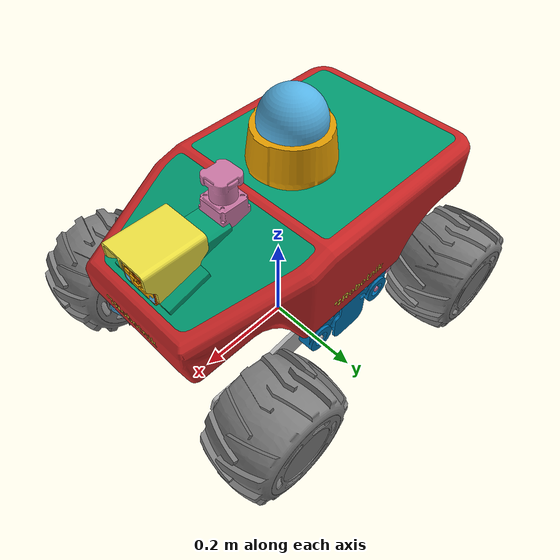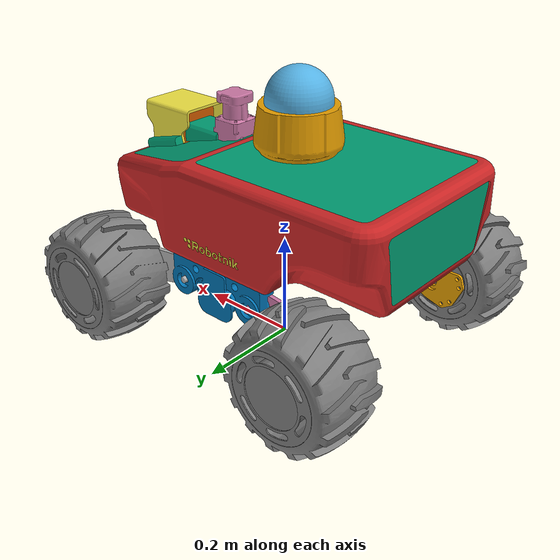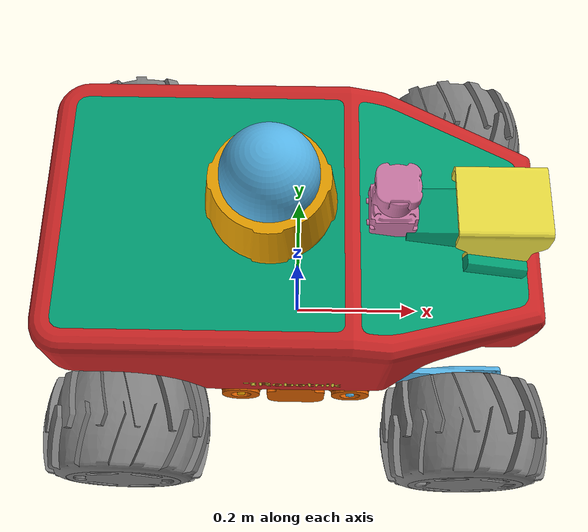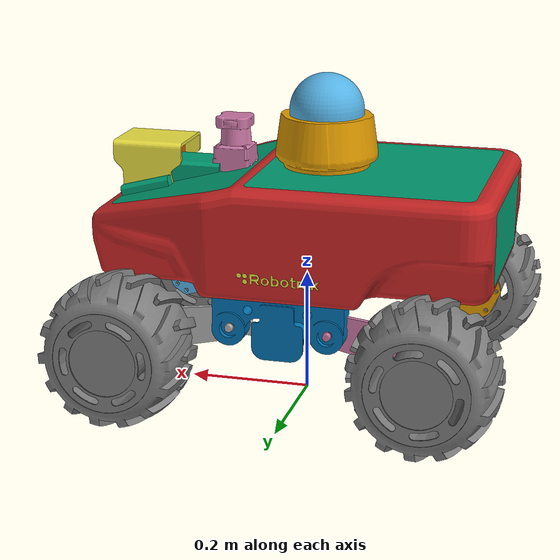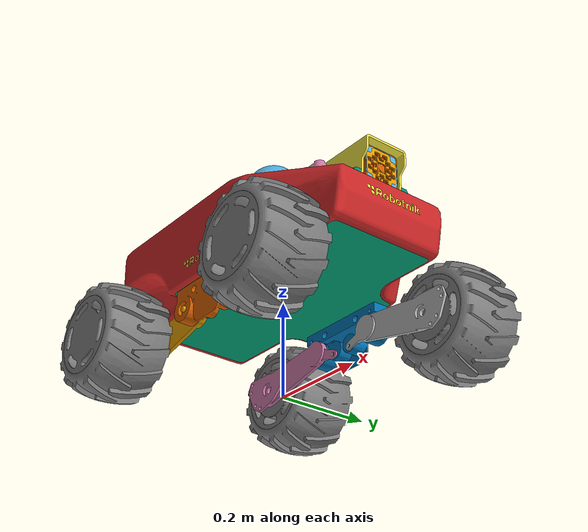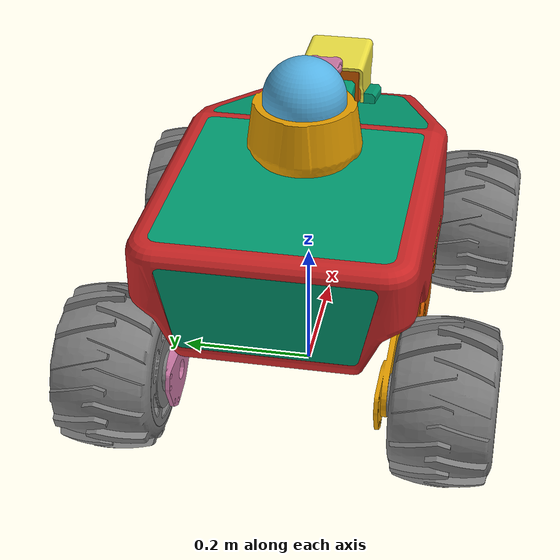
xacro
<?xml version="1.0"?>
<robot name="summit_xl" xmlns:xacro="http://www.ros.org/wiki/xacro">

  <!-- Import all Gazebo-customization elements, including Gazebo colors -->
  <xacro:include filename="$(find summit_xl_description)/urdf/summit_xl_hq.gazebo" />

  <!-- Robot mechanical and motor parameters -->
  <xacro:property name="PI" value="3.1415926535897931"/>
  <xacro:property name="wheel_offset_x" value="0.165" />    <!-- x,y,z in base_footprint CS -->
  <xacro:property name="wheel_offset_y" value="0.0"/>
  <xacro:property name="wheel_offset_z" value="0.070" />
  <xacro:property name="wheel_joint_damping" value="0.0" />
  <xacro:property name="wheel_joint_friction" value="0.0" />
  <xacro:property name="wheel_joint_effort_limit" value="100.0" />
  <xacro:property name="wheel_joint_velocity_limit" value="100.0" />
  <xacro:property name="wheel_mechanical_reduction" value="1.0" />

  <xacro:property name="ptz_joint_effort_limit" value="100.0" />
  <xacro:property name="ptz_joint_velocity_limit" value="100.0"/>
  <xacro:property name="ptz_joint_friction" value="0.1" />
  <xacro:property name="ptz_joint_damping" value="0.1" />
  <xacro:property name="ptz_mechanical_reduction" value="1.0" />

  <xacro:property name="bar_joint_effort_limit" value="100.0" />
  <xacro:property name="bar_joint_velocity_limit" value="100.0" />

  <!-- Used for fixing robot to Gazebo 'base_link' -->

  <!-- BASE FOOTPRINT -->
  <!-- base_footprint is a fictitious link(frame) that is on the ground right below base_link origin,
             navigation stack depends on this frame -->
  <link name="base_footprint">
      <visual>
          <origin xyz="0 0 0" rpy="0 0 0" />
          <geometry>
             <box size="0.001 0.001 0.001" />
          </geometry>
      </visual>

      <collision>
          <origin xyz="0 0 0" rpy="0 0 0" />
          <geometry>
            <box size="0.001 0.001 0.001" />
         </geometry>
     </collision>
  </link>

  <joint name="base_footprint_joint" type="fixed">
     <!-- NB While you would think this would make it go up, it is oddly reversed.
      This moves the joint to 0,0,0 where we want it for rviz, etc. -->
     <!-- origin xyz="0 0 0.110" rpy="0 0 0" / -->
     <origin xyz="0 0 0.210" rpy="0 0 0" />
     <parent link="base_footprint"/>
     <child link="base_link" />
  </joint>

  <!-- BASE_LINK (RED) -->
  <link name="base_link">
    <inertial>
      <mass value="25.0" />
      <origin xyz="0 0 0" />
      <inertia  ixx="1.391" ixy="0.004"  ixz="0.0"  iyy="6.853"  iyz="0.0"  izz="6.125" />
    </inertial>
    <visual>
       <origin xyz="0 0 0" rpy="0 0 0" />
       <geometry>
	 <mesh filename="package://summit_xl_description/meshes/hq_suspension/xl_chassis.dae"/>
	   </geometry>
    </visual>
    <collision>
       <origin xyz="0 0 0" rpy="0 0 0 " />
       <geometry>
         <mesh filename="package://summit_xl_description/meshes/hq_suspension/xl_chassis.dae"/>
       </geometry>
    </collision>
  </link>

  <!-- Robot covers (gray) -->
  <link name="cover_link">
    <inertial>
      <mass value="0.1" />
      <origin xyz="0 0 0" />
      <inertia  ixx="0.001" ixy="0.0"  ixz="0.0"  iyy="0.001"  iyz="0.0"  izz="0.001" />
    </inertial>
    <visual>
       <origin xyz="0 0 0" rpy="0 0 0" />
       <geometry>
	 <mesh filename="package://summit_xl_description/meshes/hq_suspension/xl_covers.dae"/>
	   </geometry>
    </visual>
    <collision>
       <origin xyz="0 0 0" rpy="0 0 0 " />
       <geometry>
         <mesh filename="package://summit_xl_description/meshes/hq_suspension/xl_covers.dae"/>
       </geometry>
    </collision>
  </link>
  <joint name="covers_joint" type="fixed">
     <origin xyz="0 0 0" rpy="0 0 0" />
     <parent link="base_link"/>
     <child link="cover_link" />
  </joint>

  <!-- ROBOTNIK LOGOS -->
  <!-- RED -->
  <link name="logo_red">
    <inertial>
      <mass value="1.0" />
      <origin xyz="0 0 0" />
      <inertia  ixx="0.001" ixy="0.0"  ixz="0.0"  iyy="0.001"  iyz="0.0"  izz="0.001" />
    </inertial>
    <visual>
       <origin xyz="0 0 0" rpy="0 0 0" />
       <geometry>
	     <mesh filename="package://summit_xl_description/meshes/hq_suspension/xl_logo_red.dae"/>
	   </geometry>
    </visual>
  </link>
  <joint name="logo_red_joint" type="fixed">
     <origin xyz="0 0 0" rpy="0 0 0" />
     <parent link="base_link"/>
     <child link="logo_red" />
  </joint>

  <!-- SUSPENSION BAR HOLDER -->
  <link name="bar_holder_left">
    <inertial>
      <mass value="1.0" />
      <origin xyz="0 0 0" />
      <inertia  ixx="0.001" ixy="0.0"  ixz="0.0"  iyy="0.001"  iyz="0.0"  izz="0.001" />
    </inertial>
    <visual>
       <origin xyz="0 0 0" rpy="0 0 0" />
       <geometry>
	 <mesh filename="package://summit_xl_description/meshes/hq_suspension/bar_holder.dae"/>
	   </geometry>
    </visual>
    <collision>
       <origin xyz="0 0 0" rpy="0 0 0 " />
       <geometry>
         <mesh filename="package://summit_xl_description/meshes/hq_suspension/bar_holder.dae"/>
	     <!-- box size = "0.750 0.4 0.3"/ -->
       </geometry>
    </collision>
  </link>

  <joint name="bar_holder_left_joint" type="fixed">
     <origin xyz="0 0.164 0.0" rpy="0 0 0" />
     <parent link="base_link"/>
     <child link="bar_holder_left" />
  </joint>

  <!-- SUSPENSION BAR HOLDER -->
  <link name="bar_holder_right">
    <inertial>
      <mass value="1.0" />
      <origin xyz="0 0 0" />
      <inertia  ixx="0.001" ixy="0.0"  ixz="0.0"  iyy="0.001"  iyz="0.0"  izz="0.001" />
    </inertial>
    <visual>
       <origin xyz="0 0 0" rpy="0 0 0" />
       <geometry>
	 <mesh filename="package://summit_xl_description/meshes/hq_suspension/bar_holder.dae"/>
	   </geometry>
    </visual>
    <collision>
       <origin xyz="0 0 0" rpy="0 0 0 " />
       <geometry>
         <mesh filename="package://summit_xl_description/meshes/hq_suspension/bar_holder.dae"/>
       </geometry>
    </collision>
  </link>

  <joint name="bar_holder_right_joint" type="fixed">
     <origin xyz="0 -0.164 0.0" rpy="0 0 3.1416" />
     <parent link="base_link"/>
     <child link="bar_holder_right" />
  </joint>

  <!-- SUSPENSION BARS -->
  <!-- SUSPENSION BARS -->
  <!-- SUSPENSION BARS -->
  <!-- SUSPENSION BARS -->

  <!-- SUSPENSION BAR BL -->
  <link name="bar_bl">
    <inertial>
      <mass value="1.0" />
      <origin xyz="0 0 0" />
      <inertia  ixx="0.001" ixy="0.0"  ixz="0.0"  iyy="0.001"  iyz="0.0"  izz="0.001" />
    </inertial>
    <visual>
       <origin xyz="0 0 0" rpy="0 0 0" />
       <geometry>
	     <mesh filename="package://summit_xl_description/meshes/hq_suspension/suspension_bar2.dae"/>
	   </geometry>
    </visual>
    <collision>
       <origin xyz="0 0 0" rpy="0 0 0 " />
       <geometry>
         <mesh filename="package://summit_xl_description/meshes/hq_suspension/suspension_bar2.dae"/>
       </geometry>
    </collision>
  </link>

  <joint name="bar_bl_joint" type="continuous">
	 <axis xyz="0 0 1"/>
     <!-- origin xyz="-0.078 0.164 -0.048" rpy="0 0 0" / -->
     <!-- origin xyz="-0.078 0.164 -0.048" rpy="-1.5708 -0.174532925 0" / -->
     <origin xyz="-0.078 0.164 -0.048" rpy="1.5708 -0.174532925 0" />
     <parent link="base_link"/>
     <child link="bar_bl" />
     <limit lower="-0.45" upper="-0.25" effort="${bar_joint_effort_limit}" velocity="${bar_joint_velocity_limit}"/>
  </joint>

  <!-- SUSPENSION BAR FL -->
  <link name="bar_fl">
    <inertial>
      <mass value="1.0" />
      <origin xyz="0 0 0" />
      <inertia  ixx="0.001" ixy="0.0"  ixz="0.0"  iyy="0.001"  iyz="0.0"  izz="0.001" />
    </inertial>
    <visual>
       <origin xyz="0 0 0" rpy="0 0 0" />
       <geometry>
	     <mesh filename="package://summit_xl_description/meshes/hq_suspension/suspension_bar1.dae"/>
	   </geometry>
    </visual>
    <collision>
       <origin xyz="0 0 0" rpy="0 0 0 " />
       <geometry>
         <mesh filename="package://summit_xl_description/meshes/hq_suspension/suspension_bar1.dae"/>
       </geometry>
    </collision>
  </link>

  <joint name="bar_fl_joint" type="continuous">
	 <axis xyz="0 0 1"/>
     <origin xyz="0.078 0.164 -0.048" rpy="1.5708 -0.174532925 3.1416" />
     <parent link="base_link"/>
     <child link="bar_fl" />
     <limit lower="0.25" upper="0.45" effort="${bar_joint_effort_limit}" velocity="${bar_joint_velocity_limit}"/>
  </joint>

  <!-- SUSPENSION BAR BR -->
  <link name="bar_br">
    <inertial>
      <mass value="1.0" />
      <origin xyz="0 0 0" />
      <inertia  ixx="0.001" ixy="0.0"  ixz="0.0"  iyy="0.001"  iyz="0.0"  izz="0.001" />
    </inertial>
    <visual>
       <origin xyz="0 0 0" rpy="0 0 0" />
       <geometry>
	     <mesh filename="package://summit_xl_description/meshes/hq_suspension/suspension_bar1.dae"/>
	   </geometry>
    </visual>
    <collision>
       <origin xyz="0 0 0" rpy="0 0 0 " />
       <geometry>
         <mesh filename="package://summit_xl_description/meshes/hq_suspension/suspension_bar1.dae"/>
       </geometry>
    </collision>
  </link>

  <joint name="bar_br_joint" type="continuous">
	 <axis xyz="0 0 1"/>
     <origin xyz="-0.078 -0.164 -0.048" rpy="1.5708 -0.174532925 0" />
     <parent link="base_link"/>
     <child link="bar_br" />
     <limit lower="-0.45" upper="-0.25" effort="${bar_joint_effort_limit}" velocity="${bar_joint_velocity_limit}"/>
  </joint>

  <!-- SUSPENSION BAR FR -->
  <link name="bar_fr">
    <inertial>
      <mass value="1.0" />
      <origin xyz="0 0 0" />
      <inertia  ixx="0.001" ixy="0.0"  ixz="0.0"  iyy="0.001"  iyz="0.0"  izz="0.001" />
    </inertial>
    <visual>
       <origin xyz="0 0 0" rpy="0 0 0" />
       <geometry>
	     <mesh filename="package://summit_xl_description/meshes/hq_suspension/suspension_bar2.dae"/>
	   </geometry>
    </visual>
    <collision>
       <origin xyz="0 0 0" rpy="0 0 0 " />
       <geometry>
         <mesh filename="package://summit_xl_description/meshes/hq_suspension/suspension_bar2.dae"/>
       </geometry>
    </collision>
  </link>

  <joint name="bar_fr_joint" type="continuous">
	 <axis xyz="0 0 1"/>
     <!-- origin xyz="0.078 -0.164 -0.048" rpy="-1.5708 -0.174532925 3.1416" / -->
     <origin xyz="0.078 -0.164 -0.048" rpy="1.5708 -0.174532925 3.1416" />
     <parent link="base_link"/>
     <child link="bar_fr" />
     <limit lower="0.25" upper="0.45" effort="${bar_joint_effort_limit}" velocity="${bar_joint_velocity_limit}"/>
  </joint>

  <!-- WHEEL MOTORS -->
  <!-- WHEEL MOTORS -->
  <!-- WHEEL MOTORS -->
  <!-- WHEEL MOTORS -->

  <!-- BACK LEFT WHEEL (GREY) -->
  <link name="back_left_wheel">
    <inertial>
      <mass value="1.250" />
      <origin xyz="0 0 0"/>
      <inertia  ixx="0.0109375" ixy="0.0"  ixz="0.0"  iyy="0.021125"  iyz="0.0"  izz="0.0109375" />
    </inertial>
    <visual>
       <origin xyz="0 0 0" rpy="0 0 3.1416" />
       <geometry>
	   <mesh filename="package://summit_xl_description/meshes/hq_suspension/wheel/xl_wheel_motor.dae" scale="1.0 1.0 1.0"/>
       <!-- cylinder radius="0.125" length="0.1"/ -->
       </geometry>
	<material name="grey">
	   <color rgba="0.5 0.5 0.5 1"/>
       </material>
    </visual>
    <collision>
       <origin xyz="0 0 0" rpy="0 0 0" />
       <geometry>
	    <mesh filename="package://summit_xl_description/meshes/hq_suspension/wheel/xl_wheel_motor.dae" scale="1.0 1.0 1.0"/>
       </geometry>
    </collision>
  </link>

  <joint name="joint_back_left_wheel" type="continuous">
    <parent link="bar_bl"/>
    <child link="back_left_wheel"/>
    <!-- origin xyz="-${wheel_offset_x} ${wheel_offset_y} 0" rpy="1.5708 0 0" / -->
    <origin xyz="-${wheel_offset_x} ${wheel_offset_y} -${wheel_offset_z}" rpy="1.5708 3.1416 0" />
    <axis xyz="0 1 0" rpy="0 0 0" />
    <limit effort="${wheel_joint_effort_limit}" velocity="${wheel_joint_velocity_limit}"/>
    <joint_properties damping="${wheel_joint_damping}" friction="{wheel_joint_friction}"/>
  </joint>

  <transmission name="joint_blw_trans">
	 <type>transmission_interface/SimpleTransmission</type>
     <joint name="joint_back_left_wheel" />
     <actuator name="joint_blw_motor">
	    <hardwareInterface>EffortJointInterface</hardwareInterface>
        <mechanicalReduction>${wheel_mechanical_reduction}</mechanicalReduction>
     </actuator>
  </transmission>

  <!-- BACK RIGHT WHEEL (GREY) -->
  <link name="back_right_wheel">
    <inertial>
      <mass value="1.250" />
      <origin xyz="0 0 0" />
      <inertia  ixx="0.0109375" ixy="0.0"  ixz="0.0"  iyy="0.021125"  iyz="0.0"  izz="0.0109375" />
    </inertial>
    <visual>
       <origin xyz="0 0 0" rpy="0 0 3.1416" />
       <geometry>
	   <mesh filename="package://summit_xl_description/meshes/hq_suspension/wheel/xl_wheel_motor.dae" scale="1.0 1.0 1.0"/>
       </geometry>
	   <material name="grey">
	    <color rgba="0.5 0.5 0.5 1"/>
       </material>
    </visual>
    <collision>
       <origin xyz="0 0 0" rpy="0 0 0" />
       <geometry>
	     <mesh filename="package://summit_xl_description/meshes/hq_suspension/wheel/xl_wheel_motor.dae" scale="1.0 1.0 1.0"/>
       </geometry>
    </collision>
  </link>

  <joint name="joint_back_right_wheel" type="continuous">
    <parent link="bar_br"/>
    <child link="back_right_wheel"/>
    <origin xyz="-${wheel_offset_x} -${wheel_offset_y} ${wheel_offset_z}" rpy="1.5708 0 1.5708" />
    <axis xyz="0 1 0" rpy="0 0 0" />
    <limit effort="${wheel_joint_effort_limit}" velocity="${wheel_joint_velocity_limit}"/>
    <joint_properties damping="${wheel_joint_damping}" friction="{wheel_joint_friction}"/>
  </joint>

  <transmission name="joint_brw_trans">
    <type>transmission_interface/SimpleTransmission</type>
    <joint name="joint_back_right_wheel" />
    <actuator name="joint_brw_motor">
	   <hardwareInterface>EffortJointInterface</hardwareInterface>
       <mechanicalReduction>${wheel_mechanical_reduction}</mechanicalReduction>
    </actuator>
  </transmission>

  <!-- FRONT LEFT WHEEL (GREY) -->
  <link name="front_left_wheel">
    <inertial>
      <mass value="1.250" />
      <origin xyz="0 0 0" />
      <inertia  ixx="0.0109375" ixy="0.0"  ixz="0.0"  iyy="0.021125"  iyz="0.0"  izz="0.0109375" />
    </inertial>
    <visual>
      <origin xyz="0 0 0" rpy="0 0 3.1416" />
      <geometry>
	  <mesh filename="package://summit_xl_description/meshes/hq_suspension/wheel/xl_wheel_motor.dae" scale="1.0 1.0 1.0"/>
      </geometry>
	  <material name="grey">
	    <color rgba="0.5 0.5 0.5 1"/>
      </material>
    </visual>
    <collision>
       <origin xyz="0 0 0" rpy="0 0 0" />
       <geometry>
	     <mesh filename="package://summit_xl_description/meshes/hq_suspension/wheel/xl_wheel_motor.dae" scale="1.0 1.0 1.0"/>
         <!-- cylinder radius="0.125" length="0.1"/ -->
       </geometry>
    </collision>
  </link>

  <joint name="joint_front_left_wheel" type="continuous">
    <parent link="bar_fl"/>
    <child link="front_left_wheel"/>
    <origin xyz="-${wheel_offset_x} ${wheel_offset_y} ${wheel_offset_z}" rpy="1.5708 0 0" />
    <axis xyz="0 1 0" rpy="0 0 0" />
    <limit effort="${wheel_joint_effort_limit}" velocity="${wheel_joint_velocity_limit}"/>
    <joint_properties damping="${wheel_joint_damping}" friction="{wheel_joint_friction}"/>
  </joint>

  <transmission name="joint_flw_trans">
	 <type>transmission_interface/SimpleTransmission</type>
     <joint name="joint_front_left_wheel" />
     <actuator name="joint_flw_motor">
	   <hardwareInterface>EffortJointInterface</hardwareInterface>
       <mechanicalReduction>${wheel_mechanical_reduction}</mechanicalReduction>
     </actuator>
  </transmission>

  <!-- FRONT RIGHT WHEEL (GREY) -->
  <link name="front_right_wheel">
    <inertial>
      <mass value="1.250" />
      <origin xyz="0 0 0" />
      <inertia  ixx="0.0109375" ixy="0.0"  ixz="0.0"  iyy="0.021125"  iyz="0.0"  izz="0.0109375" />
    </inertial>
    <visual>
       <origin xyz="0 0 0" rpy="0 0 3.1416" />
       <geometry>
	   <mesh filename="package://summit_xl_description/meshes/hq_suspension/wheel/xl_wheel_motor.dae" scale="1.0 1.0 1.0"/>
       </geometry>
	   <material name="grey">
		<color rgba="0.5 0.5 0.5 1"/>
       </material>
    </visual>
    <collision>
       <origin xyz="0 0 0" rpy="0 0 0" />
       <geometry>
	   <mesh filename="package://summit_xl_description/meshes/hq_suspension/wheel/xl_wheel_motor.dae" scale="1.0 1.0 1.0"/>
       </geometry>
    </collision>
  </link>

  <joint name="joint_front_right_wheel" type="continuous">
    <parent link="bar_fr"/>
    <child link="front_right_wheel"/>
    <origin xyz="-${wheel_offset_x} -${wheel_offset_y} -${wheel_offset_z}" rpy="1.5708 3.1416 0" />
    <axis xyz="0 1 0" rpy="0 0 0" />
    <limit effort="${wheel_joint_effort_limit}" velocity="${wheel_joint_velocity_limit}"/>
    <joint_properties damping="${wheel_joint_damping}" friction="{wheel_joint_friction}"/>
  </joint>

  <transmission name="joint_frw_trans">
	 <type>transmission_interface/SimpleTransmission</type>
     <joint name="joint_front_right_wheel" />
     <actuator name="joint_frw_motor">
	   <hardwareInterface>EffortJointInterface</hardwareInterface>
       <mechanicalReduction>${wheel_mechanical_reduction}</mechanicalReduction>
     </actuator>
  </transmission>

  <!-- WHEEL TYRES -->
  <!-- WHEEL TYRES -->
  <!-- WHEEL TYRES -->
  <!-- WHEEL TYRES -->

  <!-- BACK LEFT TYRE (BLACK) -->
  <link name="back_left_tyre">
    <inertial>
      <mass value="1.250" />
      <origin xyz="0 0 0"/>
      <inertia  ixx="0.0109375" ixy="0.0"  ixz="0.0"  iyy="0.021125"  iyz="0.0"  izz="0.0109375" />
    </inertial>
    <visual>
       <origin xyz="0 0 0" rpy="0 0 3.1416" />
       <geometry>
	     <mesh filename="package://summit_xl_description/meshes/hq_suspension/wheel/xl_wheel_tyre.dae" scale="1.0 1.0 1.0"/>
       </geometry>
	<material name="grey">
	   <color rgba="0.5 0.5 0.5 1"/>
       </material>
    </visual>
    <collision>
       <origin xyz="0 0 0" rpy="0 0 0" />
       <geometry>
	    <mesh filename="package://summit_xl_description/meshes/hq_suspension/wheel/wheel_simple_thread_2.dae" scale="1.0 1.0 1.0"/>
       </geometry>
    </collision>
  </link>

  <joint name="joint_back_left_tyre" type="fixed">
    <parent link="back_left_wheel"/>
    <child link="back_left_tyre"/>
    <origin xyz="0 0 0" rpy="0 0 3.1416" />
  </joint>

  <!-- BACK RIGHT TYRE (BLACK) -->
  <link name="back_right_tyre">
    <inertial>
      <mass value="1.250" />
      <origin xyz="0 0 0"/>
      <inertia  ixx="0.0109375" ixy="0.0"  ixz="0.0"  iyy="0.021125"  iyz="0.0"  izz="0.0109375" />
    </inertial>
    <visual>
       <origin xyz="0 0 0" rpy="0 0 3.1416" />
       <geometry>
	     <mesh filename="package://summit_xl_description/meshes/hq_suspension/wheel/xl_wheel_tyre.dae" scale="1.0 1.0 1.0"/>
       </geometry>
	<material name="grey">
	   <color rgba="0.5 0.5 0.5 1"/>
       </material>
    </visual>
    <collision>
       <origin xyz="0 0 0" rpy="0 0 0" />
       <geometry>
	    <mesh filename="package://summit_xl_description/meshes/hq_suspension/wheel/wheel_simple_thread_2.dae" scale="1.0 1.0 1.0"/>
	    <!-- cylinder radius="0.125" length="0.1"/ -->
       </geometry>
    </collision>
  </link>

  <joint name="joint_back_right_tyre" type="fixed">
    <parent link="back_right_wheel"/>
    <child link="back_right_tyre"/>
    <origin xyz="0 0 0" rpy="0 0 0" />
  </joint>

  <!-- FRONT LEFT TYRE (BLACK) -->
  <link name="front_left_tyre">
    <inertial>
      <mass value="1.250" />
      <origin xyz="0 0 0" />
      <inertia  ixx="0.0109375" ixy="0.0"  ixz="0.0"  iyy="0.021125"  iyz="0.0"  izz="0.0109375" />
    </inertial>
    <visual>
      <origin xyz="0 0 0" rpy="0 0 3.1416" />
      <geometry>
	  <mesh filename="package://summit_xl_description/meshes/hq_suspension/wheel/xl_wheel_tyre.dae" scale="1.0 1.0 1.0"/>
      </geometry>
	  <material name="grey">
	    <color rgba="0.5 0.5 0.5 1"/>
      </material>
    </visual>
    <collision>
       <origin xyz="0 0 0" rpy="0 0 0" />
       <geometry>
	     <mesh filename="package://summit_xl_description/meshes/hq_suspension/wheel/wheel_simple_thread_2.dae" scale="1.0 1.0 1.0"/>
         <!-- cylinder radius="0.125" length="0.1"/ -->
       </geometry>
    </collision>
  </link>

  <joint name="joint_front_left_tyre" type="fixed">
    <parent link="front_left_wheel"/>
    <child link="front_left_tyre"/>
    <origin xyz="0 0 0" rpy="0 0 3.1416" />
  </joint>

  <!-- FRONT RIGHT TYRE (BLACK) -->
  <link name="front_right_tyre">
    <inertial>
      <mass value="1.250" />
      <origin xyz="0 0 0" />
      <inertia  ixx="0.0109375" ixy="0.0"  ixz="0.0"  iyy="0.021125"  iyz="0.0"  izz="0.0109375" />
    </inertial>
    <visual>
      <origin xyz="0 0 0" rpy="0 0 3.1416" />
      <geometry>
	  <mesh filename="package://summit_xl_description/meshes/hq_suspension/wheel/xl_wheel_tyre.dae" scale="1.0 1.0 1.0"/>
      </geometry>
	  <material name="grey">
	    <color rgba="0.5 0.5 0.5 1"/>
      </material>
    </visual>
    <collision>
       <origin xyz="0 0 0" rpy="0 0 0" />
       <geometry>
	     <mesh filename="package://summit_xl_description/meshes/hq_suspension/wheel/wheel_simple_thread_2.dae" scale="1.0 1.0 1.0"/>
       </geometry>
    </collision>
  </link>

  <joint name="joint_front_right_tyre" type="fixed">
    <parent link="front_right_wheel"/>
    <child link="front_right_tyre"/>
    <origin xyz="0 0 0" rpy="0 0 0" />
  </joint>

  <!-- WHEEL HUBCAPS -->
  <!-- WHEEL HUBCAPS -->
  <!-- WHEEL HUBCAPS -->
  <!-- WHEEL HUBCAPS -->

  <!-- BACK LEFT HUBCUP (LIGHT GREY) -->
  <link name="back_left_hubcap">
    <inertial>
      <mass value="1.250" />
      <origin xyz="0 0 0"/>
      <inertia  ixx="0.0109375" ixy="0.0"  ixz="0.0"  iyy="0.021125"  iyz="0.0"  izz="0.0109375" />
    </inertial>
    <visual>
       <origin xyz="0 0 0" rpy="0 0 3.1416" />
       <geometry>
	     <mesh filename="package://summit_xl_description/meshes/hq_suspension/wheel/xl_wheel_hubcap.dae" scale="1.0 1.0 1.0"/>
       </geometry>
	<material name="grey">
	   <color rgba="0.5 0.5 0.5 1"/>
       </material>
    </visual>
  </link>

  <joint name="joint_back_left_hubcap" type="fixed">
    <parent link="back_left_wheel"/>
    <child link="back_left_hubcap"/>
    <origin xyz="0 0 0" rpy="0 0 3.1416" />
  </joint>

  <!-- BACK RIGHT HUBCUP (LIGHT GREY) -->
  <link name="back_right_hubcap">
    <inertial>
      <mass value="1.250" />
      <origin xyz="0 0 0"/>
      <inertia  ixx="0.0109375" ixy="0.0"  ixz="0.0"  iyy="0.021125"  iyz="0.0"  izz="0.0109375" />
    </inertial>
    <visual>
       <origin xyz="0 0 0" rpy="0 0 3.1416" />
       <geometry>
	     <mesh filename="package://summit_xl_description/meshes/hq_suspension/wheel/xl_wheel_hubcap.dae" scale="1.0 1.0 1.0"/>
       </geometry>
	<material name="grey">
	   <color rgba="0.5 0.5 0.5 1"/>
       </material>
    </visual>
  </link>

  <joint name="joint_back_right_hubcap" type="fixed">
    <parent link="back_right_wheel"/>
    <child link="back_right_hubcap"/>
    <origin xyz="0 0 0" rpy="0 0 0" />
  </joint>

  <!-- FRONT LEFT HUBCUP (LIGHT GREY) -->
  <link name="front_left_hubcap">
    <inertial>
      <mass value="1.250" />
      <origin xyz="0 0 0"/>
      <inertia  ixx="0.0109375" ixy="0.0"  ixz="0.0"  iyy="0.021125"  iyz="0.0"  izz="0.0109375" />
    </inertial>
    <visual>
       <origin xyz="0 0 0" rpy="0 0 3.1416" />
       <geometry>
	     <mesh filename="package://summit_xl_description/meshes/hq_suspension/wheel/xl_wheel_hubcap.dae" scale="1.0 1.0 1.0"/>
       </geometry>
	<material name="grey">
	   <color rgba="0.5 0.5 0.5 1"/>
       </material>
    </visual>
  </link>

  <joint name="joint_front_left_hubcap" type="fixed">
    <parent link="front_left_wheel"/>
    <child link="front_left_hubcap"/>
    <origin xyz="0 0 0" rpy="0 0 3.1416" />
  </joint>

  <!-- FRONT RIGHT HUBCUP (LIGHT GREY) -->
  <link name="front_right_hubcap">
    <inertial>
      <mass value="1.250" />
      <origin xyz="0 0 0"/>
      <inertia  ixx="0.0109375" ixy="0.0"  ixz="0.0"  iyy="0.021125"  iyz="0.0"  izz="0.0109375" />
    </inertial>
    <visual>
       <origin xyz="0 0 0" rpy="0 0 3.1416" />
       <geometry>
	     <mesh filename="package://summit_xl_description/meshes/hq_suspension/wheel/xl_wheel_hubcap.dae" scale="1.0 1.0 1.0"/>
       </geometry>
	<material name="grey">
	   <color rgba="0.5 0.5 0.5 1"/>
       </material>
    </visual>
  </link>

  <joint name="joint_front_right_hubcap" type="fixed">
    <parent link="front_right_wheel"/>
    <child link="front_right_hubcap"/>
    <origin xyz="0 0 0" rpy="0 0 0" />
  </joint>

  <!-- HOKUYO SENSOR -->
  <joint name="hokuyo_laser_joint" type="fixed">
     <axis xyz="0 1 0" />
     <!-- FRONT MOUNT -->
     <!-- origin xyz="0.29 0 0.1"/ -->
     <!-- FRONT AXIS TOP MOUNT -->
     <!-- origin xyz="0.0 0.0 0.325"/ -->
     <!-- TOP AXIS FRONT MOUNT (WHEN USING ALSO FOTONIC) -->
     <!-- origin xyz="0.120 0.0 0.260"/ -->
     <origin xyz="0.120 0.0 0.160"/>
     <parent link="base_link"/>
     <child link="hokuyo_laser_link"/>
  </joint>

  <!-- Hokuyo Laser -->
  <link name="hokuyo_laser_link">
    <collision>
      <origin xyz="0 0 0" rpy="0 0 0"/>
      <geometry>
		<box size="0.1 0.1 0.1"/>
      </geometry>
    </collision>

    <visual>
      <origin xyz="0 0 0" rpy="0 0 0"/>
      <geometry>
        <mesh filename="package://summit_xl_description/meshes/hq_suspension/hokuyo-utm30-lx-hq.dae"/>
      </geometry>
    </visual>

    <inertial>
      <mass value="1e-5" />
      <origin xyz="0 0 0" rpy="0 0 0"/>
      <inertia ixx="1e-6" ixy="0" ixz="0" iyy="1e-6" iyz="0" izz="1e-6" />
    </inertial>
  </link>

  <!-- IMU SENSOR -->
  <joint name="imu_joint" type="fixed">
      <axis xyz="1 0 0"/>
      <origin xyz="0 0 0.2825"/>
      <parent link="base_link"/>
      <child link="imu_link"/>
  </joint>

  <link name="imu_link">
      <inertial>
        <mass value="0.001"/>
        <origin rpy="0 0 0" xyz="0 0 0"/>
        <inertia ixx="0.0001" ixy="0" ixz="0" iyy="0.000001" iyz="0" izz="0.0001"/>
      </inertial>
      <visual>
        <origin rpy="0 0 0" xyz="0 0 0"/>
        <geometry>
          <box size="0.001 0.001 0.001"/>
        </geometry>
      </visual>
      <collision>
        <origin rpy="0 0 0" xyz="0 0 0"/>
        <geometry>
          <box size=".001 .001 .001"/>
        </geometry>
      </collision>
  </link>

  <!-- AXIS CAMERA VISUAL -->
  <!-- link name="camera_link" type="camera" -->
  <link name="camera_link" type="camera">
     <inertial>
       <mass value="0.001" />
       <origin xyz="0 0 0" rpy="0 0 0" />
       <inertia ixx="0.0001" ixy="0" ixz="0" iyy="0.000001" iyz="0" izz="0.0001" />
    </inertial>
    <visual>
      <origin xyz="0 0 0" rpy="0 0 0"/>
      <geometry>
	   <mesh filename= "package://summit_xl_description/meshes/hq_suspension/axis_p5512_base.dae" scale="1.0 1.0 1.0"/>
      </geometry>
    </visual>
    <collision>
      <origin xyz="0 0 0" rpy="0 0 0"/>
      <geometry>
        <mesh filename= "package://summit_xl_description/meshes/hq_suspension/axis_p5512_base.dae" scale="1.0 1.0 1.0"/>
      </geometry>
    </collision>
  </link>
  <joint name="camera_joint" type="fixed">
     <axis xyz="0 1 0" />
     <!-- origin xyz="0.0 0.0 -0.015"/ -->
     <origin xyz="0.0 0.0 -0.115"/>
     <parent link="base_link"/>
     <child link="camera_link"/>
  </joint>

  <!-- AXIS CAMERA VISUAL -->
  <link name="camera_link_sphere" type="camera">
     <inertial>
       <mass value="0.001" />
       <origin xyz="0 0 0" rpy="0 0 0" />
       <inertia ixx="0.0001" ixy="0" ixz="0" iyy="0.000001" iyz="0" izz="0.0001" />
    </inertial>
    <visual>
      <origin xyz="0 0 0" rpy="0 0 0"/>
      <geometry>
	   <mesh filename= "package://summit_xl_description/meshes/hq_suspension/axis_p5512_sphere.dae" scale="1.0 1.0 1.0"/>
      </geometry>
    </visual>
    <collision>
      <origin xyz="0 0 0" rpy="0 0 0"/>
      <geometry>
        <mesh filename= "package://summit_xl_description/meshes/hq_suspension/axis_p5512_sphere.dae" scale="1.0 1.0 1.0"/>
      </geometry>
    </collision>
  </link>
  <joint name="camera_joint_sphere" type="fixed">
     <axis xyz="0 1 0" />
     <!-- origin xyz="0.0 0.0 -0.015"/ -->
     <origin xyz="0.0 0.0 -0.115"/>
     <parent link="base_link"/>
     <child link="camera_link_sphere"/>
  </joint>

  <!-- AXIS PTZ CAMERA WITH PAN AND TILT -->
  <link name="camera_base_link">
     <inertial>
       <mass value="0.1" />
       <origin xyz="0 0 0" rpy="0 0 0" />
       <inertia ixx="0.1" ixy="0" ixz="0" iyy="0.1" iyz="0" izz="0.1" />
    </inertial>
  </link>
  <joint name="joint_camera" type="fixed">
     <axis xyz="0 1 0" />
     <!-- origin xyz="0.180 0.0 0.270"/ -->
     <origin xyz="-0.030 0.0 0.380"/>
     <parent link="base_link"/>
     <child link="camera_base_link"/>
  </joint>
  <link name="camera_pan_link">
     <inertial>
       <mass value="0.1" />
       <origin xyz="0 0 0" rpy="0 0 0" />
       <inertia ixx="0.1" ixy="0" ixz="0" iyy="0.1" iyz="0" izz="0.1" />
    </inertial>
  </link>
  <joint name="joint_camera_pan" type="continuous">
     <axis xyz="0 0 1" />
     <origin xyz="0.0 0.0 0.0"/>
     <parent link="camera_base_link"/>
     <child link="camera_pan_link"/>
     <limit effort="${ptz_joint_effort_limit}" velocity="${ptz_joint_velocity_limit}" lower="-3.1416" upper="3.1416"/>
     <joint_properties damping="${ptz_joint_damping}" friction="{ptz_joint_friction}"/>
  </joint>
  <transmission name="joint_pan_trans">
	 <type>transmission_interface/SimpleTransmission</type>
     <joint name="joint_camera_pan" />
     <actuator name="pan_motor">
	   <hardwareInterface>EffortJointInterface</hardwareInterface>
       <mechanicalReduction>${ptz_mechanical_reduction}</mechanicalReduction>
     </actuator>
  </transmission>

  <link name="camera_tilt_link">
     <inertial>
       <mass value="0.1" />
       <origin xyz="0 0 0" rpy="0 0 0" />
       <inertia ixx="0.1" ixy="0" ixz="0" iyy="0.1" iyz="0" izz="0.1" />
    </inertial>
  </link>
  <joint name="joint_camera_tilt" type="continuous">
     <axis xyz="0 1 0" />
     <origin xyz="0.0 0.0 0.0"/>
     <parent link="camera_pan_link"/>
     <child link="camera_tilt_link"/>
     <limit effort="${ptz_joint_effort_limit}" velocity="${ptz_joint_velocity_limit}" lower="-1.5708" upper="1.5708"/>
     <joint_properties damping="${ptz_joint_damping}" friction="{ptz_joint_friction}"/>
  </joint>
  <transmission name="joint_tilt_trans">
	 <type>transmission_interface/SimpleTransmission</type>
     <joint name="joint_camera_tilt" />
     <actuator name="tilt_motor">
	   <hardwareInterface>EffortJointInterface</hardwareInterface>
       <mechanicalReduction>${ptz_mechanical_reduction}</mechanicalReduction>
     </actuator>
  </transmission>

  <!-- FOTONIC 3D TOF LASER SENSOR -->
  <!-- IN SEVERAL PARTS TO ALLOW SHAPE COLOURS -->
  <joint name="fotonic_laser_joint" type="fixed">
     <axis xyz="0 0 1" />
     <origin xyz="0.0 0.0 0.0"/>
     <parent link="base_link"/>
     <child link="kinect_link"/>
  </joint>

  <link name="kinect_link">
    <inertial>
      <mass value="0.0001" />
      <origin xyz="0 0 0" />
      <inertia ixx="0.0001" ixy="0.0" ixz="0.0"
               iyy="0.0001" iyz="0.0"
               izz="0.0001" />
    </inertial>
    <visual>
      <origin xyz="0 0 0" rpy="0 0 0"/>
      <geometry>
	<mesh filename= "package://summit_xl_description/meshes/hq_suspension/fotonic_v1/fotonic_1.dae" scale="1.0 1.0 1.0"/>
      </geometry>
    </visual>
  </link>

  <joint name="kinect_depth_joint" type="fixed">
    <!-- origin xyz="0.275 0 0.260" rpy="0 0 0" / -->
    <origin xyz="0.275 0 0.160" rpy="0 0 0" />
    <parent link="kinect_link" />
    <child link="kinect_depth_frame" />
  </joint>

  <link name="kinect_depth_frame">
    <inertial>
      <mass value="0.0001" />
      <origin xyz="0 0 0" />
      <inertia ixx="0.0001" ixy="0.0" ixz="0.0"
               iyy="0.0001" iyz="0.0"
               izz="0.0001" />
    </inertial>
  </link>

  <joint name="depth_optical_joint" type="fixed">
    <origin xyz="0 0 0" rpy="-1.5708 0 -1.5708" />
    <parent link="kinect_depth_frame" />
    <child link="kinect_depth_optical_frame" />
  </joint>

  <link name="kinect_depth_optical_frame">
    <inertial>
      <mass value="0.0001" />
      <origin xyz="0 0 0" />
      <inertia ixx="0.0001" ixy="0.0" ixz="0.0"
               iyy="0.0001" iyz="0.0"
               izz="0.0001" />
    </inertial>
  </link>

  <link name="fotonic_2_link">
    <inertial>
      <mass value="0.0001" />
      <origin xyz="0 0 0" />
      <inertia ixx="0.0001" ixy="0.0" ixz="0.0"
               iyy="0.0001" iyz="0.0"
               izz="0.0001" />
    </inertial>
    <visual>
      <origin xyz="0 0 0" rpy="0 0 0"/>
      <geometry>
	<mesh filename= "package://summit_xl_description/meshes/hq_suspension/fotonic_v1/fotonic_2.dae" scale="1.0 1.0 1.0"/>
      </geometry>
    </visual>
  </link>

  <joint name="fotonic_2_joint" type="fixed">
    <origin xyz="0 0 0" rpy="0 0 0" />
    <parent link="kinect_link" />
    <child link="fotonic_2_link" />
  </joint>

  <link name="fotonic_3_link">
    <inertial>
      <mass value="0.0001" />
      <origin xyz="0 0 0" />
      <inertia ixx="0.0001" ixy="0.0" ixz="0.0"
               iyy="0.0001" iyz="0.0"
               izz="0.0001" />
    </inertial>
    <visual>
      <origin xyz="0 0 0" rpy="0 0 0"/>
      <geometry>
	<mesh filename= "package://summit_xl_description/meshes/hq_suspension/fotonic_v1/fotonic_3.dae" scale="1.0 1.0 1.0"/>
      </geometry>
    </visual>
  </link>

  <joint name="fotonic_3_joint" type="fixed">
    <origin xyz="0 0 0" rpy="0 0 0" />
    <parent link="kinect_link" />
    <child link="fotonic_3_link" />
  </joint>

  <link name="fotonic_4_link">
    <inertial>
      <mass value="0.0001" />
      <origin xyz="0 0 0" />
      <inertia ixx="0.0001" ixy="0.0" ixz="0.0"
               iyy="0.0001" iyz="0.0"
               izz="0.0001" />
    </inertial>
    <visual>
      <origin xyz="0 0 0" rpy="0 0 0"/>
      <geometry>
	<mesh filename= "package://summit_xl_description/meshes/hq_suspension/fotonic_v1/fotonic_4.dae" scale="1.0 1.0 1.0"/>
      </geometry>
    </visual>
  </link>

  <joint name="fotonic_4_joint" type="fixed">
    <origin xyz="0 0 0" rpy="0 0 0" />
    <parent link="kinect_link" />
    <child link="fotonic_4_link" />
  </joint>

  <link name="fotonic_5_link">
    <inertial>
      <mass value="0.0001" />
      <origin xyz="0 0 0" />
      <inertia ixx="0.0001" ixy="0.0" ixz="0.0"
               iyy="0.0001" iyz="0.0"
               izz="0.0001" />
    </inertial>
    <visual>
      <origin xyz="0 0 0" rpy="0 0 0"/>
      <geometry>
	<mesh filename= "package://summit_xl_description/meshes/hq_suspension/fotonic_v1/fotonic_5.dae" scale="1.0 1.0 1.0"/>
      </geometry>
    </visual>
    <collision>
      <origin xyz="0 0 0" rpy="0 0 0"/>
      <geometry>
        <mesh filename= "package://summit_xl_description/meshes/hq_suspension/fotonic_v1/fotonic_5.dae" scale="1.0 1.0 1.0"/>
      </geometry>
    </collision>
  </link>

  <joint name="fotonic_5_joint" type="fixed">
    <origin xyz="0 0 0" rpy="0 0 0" />
    <parent link="kinect_link" />
    <child link="fotonic_5_link" />
  </joint>

</robot>
